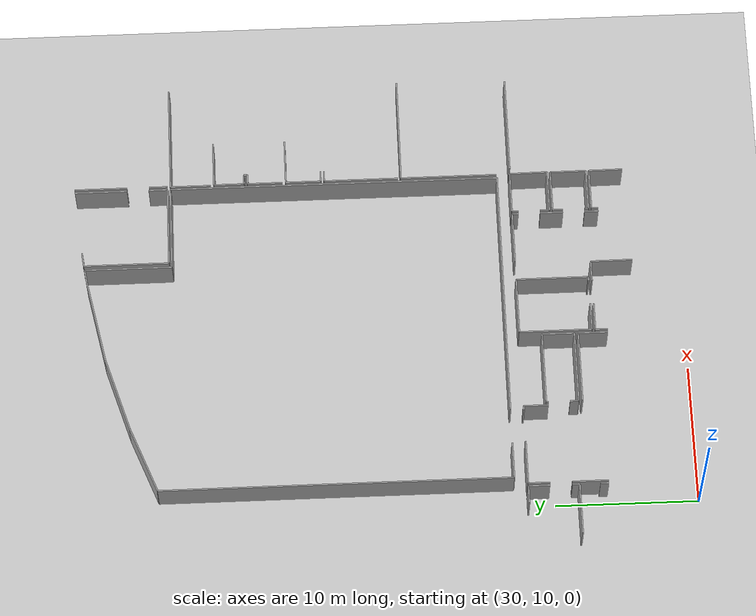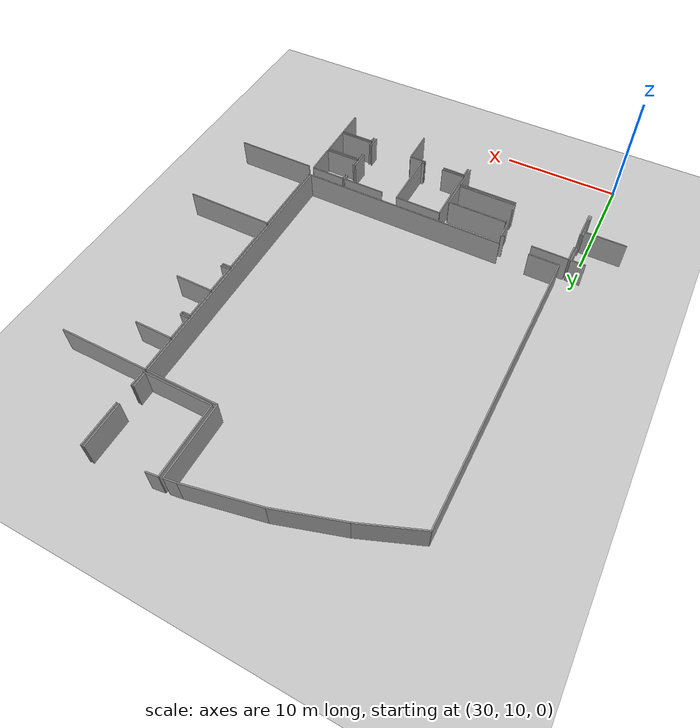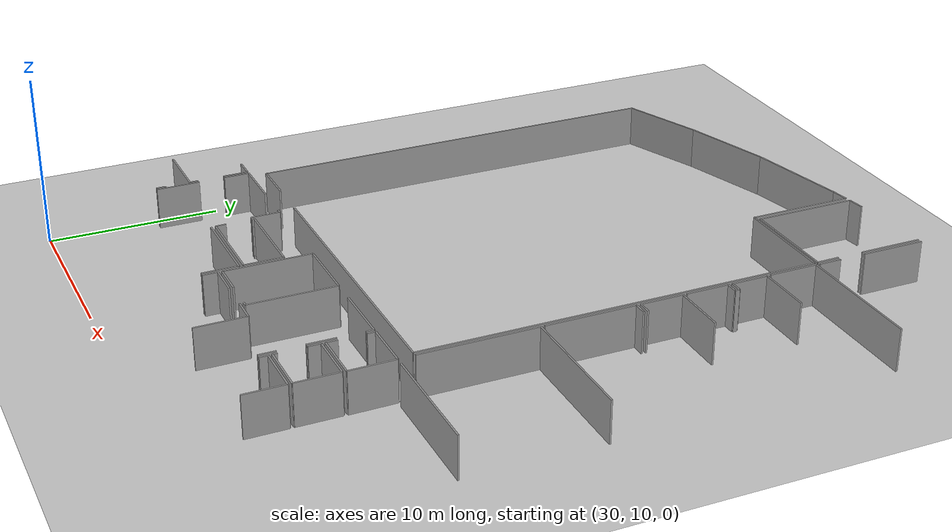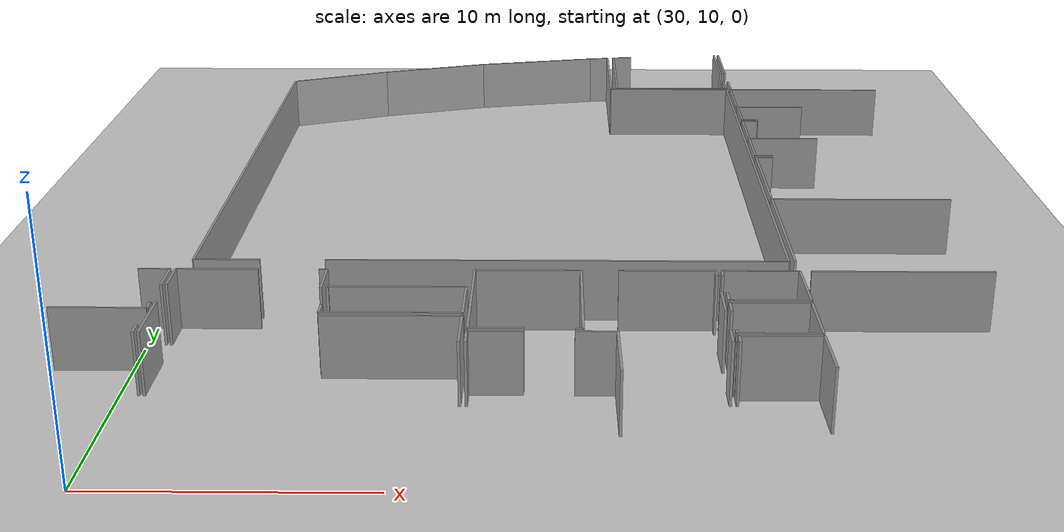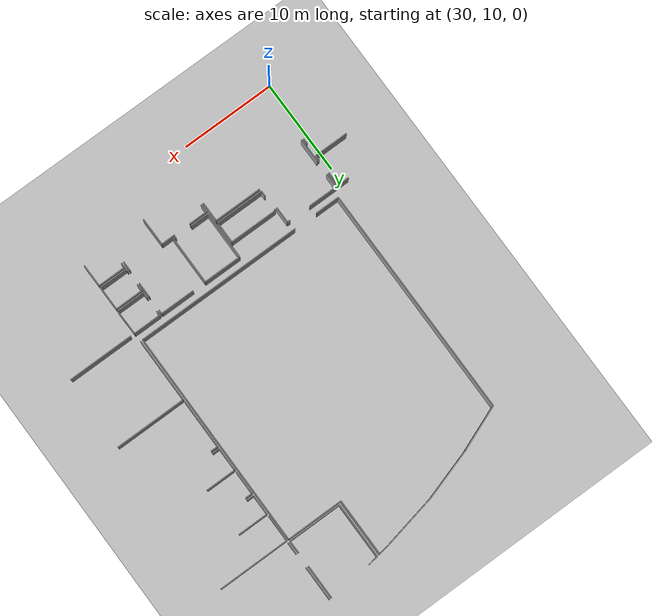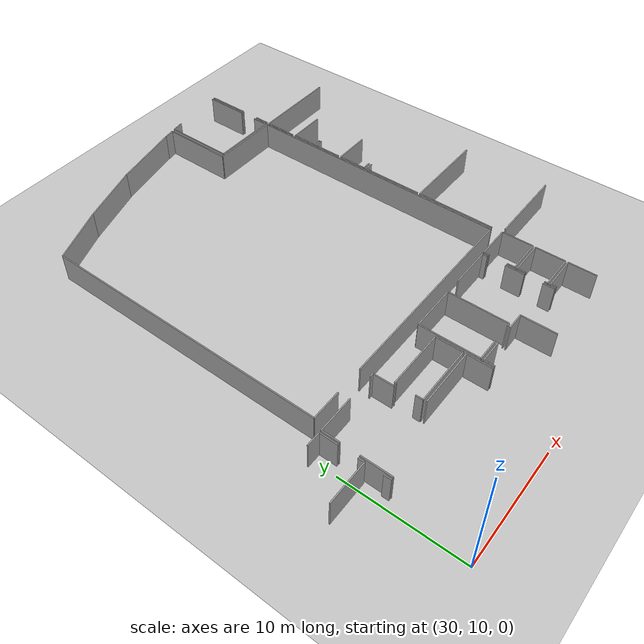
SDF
<sdf version="1.6">
 <world name="default">
  <model name="ground_plane">
   <static>1</static>
   <link name="link">
    <collision name="collision">
     <geometry><plane><normal>0 0 1</normal><size>100 100</size></plane></geometry>
     <surface><friction><ode><mu>100</mu><mu2>50</mu2></ode></friction></surface>
    </collision>
    <visual name="visual">
     <cast_shadows>0</cast_shadows>
     <geometry><plane><normal>0 0 1</normal><size>100 100</size></plane></geometry>
     <material>
      <script><uri>file://media/materials/scripts/gazebo.material</uri><name>Gazebo/Grey</name></script>
     </material>
    </visual>
   </link>
  </model>
  <model name="0510032217_A-40">
   <static>1</static>
   <link name="Wall_87">
    <collision name="Wall_87_Collision">
     <geometry><box><size>1.73548370724 0.1 2.5</size></box></geometry>
     <pose>0.867741853619 0 1.25 0 0 0</pose>
    </collision>
    <visual name="Wall_87_Visual">
     <pose>0.867741853619 0 1.25 0 0 0</pose>
     <geometry><box><size>1.73548370724 0.1 2.5</size></box></geometry>
     <material>
      <script><uri>file://media/materials/scripts/gazebo.material</uri><name>Gazebo/Grey</name></script>
      <ambient>1 1 1 1</ambient>
     </material>
    </visual>
    <pose>113.449840118 -32.9225713126 0 0 0 1.57079632679</pose>
   </link>
   <link name="Wall_88">
    <collision name="Wall_88_Collision">
     <geometry><box><size>0.306314079789 0.1 2.5</size></box></geometry>
     <pose>0.153157039894 0 1.25 0 0 0</pose>
    </collision>
    <visual name="Wall_88_Visual">
     <pose>0.153157039894 0 1.25 0 0 0</pose>
     <geometry><box><size>0.306314079789 0.1 2.5</size></box></geometry>
     <material>
      <script><uri>file://media/materials/scripts/gazebo.material</uri><name>Gazebo/Grey</name></script>
      <ambient>1 1 1 1</ambient>
     </material>
    </visual>
    <pose>113.449840118 -31.1870876053 0 0 0 3.14159265359</pose>
   </link>
   <link name="Wall_89">
    <collision name="Wall_89_Collision">
     <geometry><box><size>3.14866511014 0.1 2.5</size></box></geometry>
     <pose>1.57433255507 0 1.25 0 0 0</pose>
    </collision>
    <visual name="Wall_89_Visual">
     <pose>1.57433255507 0 1.25 0 0 0</pose>
     <geometry><box><size>3.14866511014 0.1 2.5</size></box></geometry>
     <material>
      <script><uri>file://media/materials/scripts/gazebo.material</uri><name>Gazebo/Grey</name></script>
      <ambient>1 1 1 1</ambient>
     </material>
    </visual>
    <pose>110.817239367 -31.1870876053 0 0 0 3.14159265359</pose>
   </link>
   <link name="Wall_90">
    <collision name="Wall_90_Collision">
     <geometry><box><size>1.51126789158 0.1 2.5</size></box></geometry>
     <pose>0.755633945792 0 1.25 0 0 0</pose>
    </collision>
    <visual name="Wall_90_Visual">
     <pose>0.755633945792 0 1.25 0 0 0</pose>
     <geometry><box><size>1.51126789158 0.1 2.5</size></box></geometry>
     <material>
      <script><uri>file://media/materials/scripts/gazebo.material</uri><name>Gazebo/Grey</name></script>
      <ambient>1 1 1 1</ambient>
     </material>
    </visual>
    <pose>107.668574256 -31.1870876053 0 0 0 -1.57079632679</pose>
   </link>
   <link name="Wall_91">
    <collision name="Wall_91_Collision">
     <geometry><box><size>2.55215206578 0.1 2.5</size></box></geometry>
     <pose>1.27607603289 0 1.25 0 0 0</pose>
    </collision>
    <visual name="Wall_91_Visual">
     <pose>1.27607603289 0 1.25 0 0 0</pose>
     <geometry><box><size>2.55215206578 0.1 2.5</size></box></geometry>
     <material>
      <script><uri>file://media/materials/scripts/gazebo.material</uri><name>Gazebo/Grey</name></script>
      <ambient>1 1 1 1</ambient>
     </material>
    </visual>
    <pose>107.668574256 -34.2324637093 0 0 0 -1.57079632679</pose>
   </link>
   <link name="Wall_93">
    <collision name="Wall_93_Collision">
     <geometry><box><size>3.59646228809 0.1 2.5</size></box></geometry>
     <pose>1.79823114405 0 1.25 0 0 0</pose>
    </collision>
    <visual name="Wall_93_Visual">
     <pose>1.79823114405 0 1.25 0 0 0</pose>
     <geometry><box><size>3.59646228809 0.1 2.5</size></box></geometry>
     <material>
      <script><uri>file://media/materials/scripts/gazebo.material</uri><name>Gazebo/Grey</name></script>
      <ambient>1 1 1 1</ambient>
     </material>
    </visual>
    <pose>107.462250025 -34.750558319 0 0 0 3.14159265359</pose>
   </link>
   <link name="Wall_98">
    <collision name="Wall_98_Collision">
     <geometry><box><size>1.22614455385 0.1 2.5</size></box></geometry>
     <pose>0.613072276926 0 1.25 0 0 0</pose>
    </collision>
    <visual name="Wall_98_Visual">
     <pose>0.613072276926 0 1.25 0 0 0</pose>
     <geometry><box><size>1.22614455385 0.1 2.5</size></box></geometry>
     <material>
      <script><uri>file://media/materials/scripts/gazebo.material</uri><name>Gazebo/Grey</name></script>
      <ambient>1 1 1 1</ambient>
     </material>
    </visual>
    <pose>106.239277738 -31.1966044056 0 0 0 0.0</pose>
   </link>
   <link name="Wall_99">
    <collision name="Wall_99_Collision">
     <geometry><box><size>1.49451832301 0.1 2.5</size></box></geometry>
     <pose>0.747259161506 0 1.25 0 0 0</pose>
    </collision>
    <visual name="Wall_99_Visual">
     <pose>0.747259161506 0 1.25 0 0 0</pose>
     <geometry><box><size>1.49451832301 0.1 2.5</size></box></geometry>
     <material>
      <script><uri>file://media/materials/scripts/gazebo.material</uri><name>Gazebo/Grey</name></script>
      <ambient>1 1 1 1</ambient>
     </material>
    </visual>
    <pose>107.465422292 -31.1966044056 0 0 0 -1.57079632679</pose>
   </link>
   <link name="Wall_100">
    <collision name="Wall_100_Collision">
     <geometry><box><size>0.503258399398 0.1 2.5</size></box></geometry>
     <pose>0.251629199699 0 1.25 0 0 0</pose>
    </collision>
    <visual name="Wall_100_Visual">
     <pose>0.251629199699 0 1.25 0 0 0</pose>
     <geometry><box><size>0.503258399398 0.1 2.5</size></box></geometry>
     <material>
      <script><uri>file://media/materials/scripts/gazebo.material</uri><name>Gazebo/Grey</name></script>
      <ambient>1 1 1 1</ambient>
     </material>
    </visual>
    <pose>107.465422292 -34.2473099178 0 0 0 -1.57709982374</pose>
   </link>
   <link name="Wall_104">
    <collision name="Wall_104_Collision">
     <geometry><box><size>0.586996244036 0.1 2.5</size></box></geometry>
     <pose>0.293498122018 0 1.25 0 0 0</pose>
    </collision>
    <visual name="Wall_104_Visual">
     <pose>0.293498122018 0 1.25 0 0 0</pose>
     <geometry><box><size>0.586996244036 0.1 2.5</size></box></geometry>
     <material>
      <script><uri>file://media/materials/scripts/gazebo.material</uri><name>Gazebo/Grey</name></script>
      <ambient>1 1 1 1</ambient>
     </material>
    </visual>
    <pose>107.467452543 -36.1853111359 0 0 0 -1.57079632679</pose>
   </link>
   <link name="Wall_106">
    <collision name="Wall_106_Collision">
     <geometry><box><size>5.13945284743 0.1 2.5</size></box></geometry>
     <pose>2.56972642371 0 1.25 0 0 0</pose>
    </collision>
    <visual name="Wall_106_Visual">
     <pose>2.56972642371 0 1.25 0 0 0</pose>
     <geometry><box><size>5.13945284743 0.1 2.5</size></box></geometry>
     <material>
      <script><uri>file://media/materials/scripts/gazebo.material</uri><name>Gazebo/Grey</name></script>
      <ambient>1 1 1 1</ambient>
     </material>
    </visual>
    <pose>118.833684398 -35.0583950868 0 0 0 3.14159265359</pose>
   </link>
   <link name="Wall_107">
    <collision name="Wall_107_Collision">
     <geometry><box><size>0.60907522079 0.1 2.5</size></box></geometry>
     <pose>0.304537610395 0 1.25 0 0 0</pose>
    </collision>
    <visual name="Wall_107_Visual">
     <pose>0.304537610395 0 1.25 0 0 0</pose>
     <geometry><box><size>0.60907522079 0.1 2.5</size></box></geometry>
     <material>
      <script><uri>file://media/materials/scripts/gazebo.material</uri><name>Gazebo/Grey</name></script>
      <ambient>1 1 1 1</ambient>
     </material>
    </visual>
    <pose>113.69423155 -35.0583950868 0 0 0 1.57079632679</pose>
   </link>
   <link name="Wall_108">
    <collision name="Wall_108_Collision">
     <geometry><box><size>0.150238554461 0.1 2.5</size></box></geometry>
     <pose>0.0751192772307 0 1.25 0 0 0</pose>
    </collision>
    <visual name="Wall_108_Visual">
     <pose>0.0751192772307 0 1.25 0 0 0</pose>
     <geometry><box><size>0.150238554461 0.1 2.5</size></box></geometry>
     <material>
      <script><uri>file://media/materials/scripts/gazebo.material</uri><name>Gazebo/Grey</name></script>
      <ambient>1 1 1 1</ambient>
     </material>
    </visual>
    <pose>113.69423155 -32.9309460968 0 0 0 1.57079632679</pose>
   </link>
   <link name="Wall_109">
    <collision name="Wall_109_Collision">
     <geometry><box><size>5.1483351944 0.1 2.5</size></box></geometry>
     <pose>2.5741675972 0 1.25 0 0 0</pose>
    </collision>
    <visual name="Wall_109_Visual">
     <pose>2.5741675972 0 1.25 0 0 0</pose>
     <geometry><box><size>5.1483351944 0.1 2.5</size></box></geometry>
     <material>
      <script><uri>file://media/materials/scripts/gazebo.material</uri><name>Gazebo/Grey</name></script>
      <ambient>1 1 1 1</ambient>
     </material>
    </visual>
    <pose>113.69423155 -32.7807075424 0 0 0 0.0</pose>
   </link>
   <link name="Wall_110">
    <collision name="Wall_110_Collision">
     <geometry><box><size>2.27770486369 0.1 2.5</size></box></geometry>
     <pose>1.13885243184 0 1.25 0 0 0</pose>
    </collision>
    <visual name="Wall_110_Visual">
     <pose>1.13885243184 0 1.25 0 0 0</pose>
     <geometry><box><size>2.27770486369 0.1 2.5</size></box></geometry>
     <material>
      <script><uri>file://media/materials/scripts/gazebo.material</uri><name>Gazebo/Grey</name></script>
      <ambient>1 1 1 1</ambient>
     </material>
    </visual>
    <pose>118.842566744 -32.7807075424 0 0 0 -1.57469602847</pose>
   </link>
   <link name="Wall_111">
    <collision name="Wall_111_Collision">
     <geometry><box><size>17.9050350218 0.1 2.5</size></box></geometry>
     <pose>8.95251751091 0 1.25 0 0 0</pose>
    </collision>
    <visual name="Wall_111_Visual">
     <pose>8.95251751091 0 1.25 0 0 0</pose>
     <geometry><box><size>17.9050350218 0.1 2.5</size></box></geometry>
     <material>
      <script><uri>file://media/materials/scripts/gazebo.material</uri><name>Gazebo/Grey</name></script>
      <ambient>1 1 1 1</ambient>
     </material>
    </visual>
    <pose>131.143348391 -30.2519033601 0 0 0 3.14159265359</pose>
   </link>
   <link name="Wall_112">
    <collision name="Wall_112_Collision">
     <geometry><box><size>2.58197137346 0.1 2.5</size></box></geometry>
     <pose>1.29098568673 0 1.25 0 0 0</pose>
    </collision>
    <visual name="Wall_112_Visual">
     <pose>1.29098568673 0 1.25 0 0 0</pose>
     <geometry><box><size>2.58197137346 0.1 2.5</size></box></geometry>
     <material>
      <script><uri>file://media/materials/scripts/gazebo.material</uri><name>Gazebo/Grey</name></script>
      <ambient>1 1 1 1</ambient>
     </material>
    </visual>
    <pose>110.724482286 -30.2519033601 0 0 0 3.14159265359</pose>
   </link>
   <link name="Wall_113">
    <collision name="Wall_113_Collision">
     <geometry><box><size>24.6818850878 0.1 2.5</size></box></geometry>
     <pose>12.3409425439 0 1.25 0 0 0</pose>
    </collision>
    <visual name="Wall_113_Visual">
     <pose>12.3409425439 0 1.25 0 0 0</pose>
     <geometry><box><size>24.6818850878 0.1 2.5</size></box></geometry>
     <material>
      <script><uri>file://media/materials/scripts/gazebo.material</uri><name>Gazebo/Grey</name></script>
      <ambient>1 1 1 1</ambient>
     </material>
    </visual>
    <pose>108.142510913 -30.2519033601 0 0 0 1.57079632679</pose>
   </link>
   <link name="Wall_114">
    <collision name="Wall_114_Collision">
     <geometry><box><size>5.05273165295 0.1 2.5</size></box></geometry>
     <pose>2.52636582647 0 1.25 0 0 0</pose>
    </collision>
    <visual name="Wall_114_Visual">
     <pose>2.52636582647 0 1.25 0 0 0</pose>
     <geometry><box><size>5.05273165295 0.1 2.5</size></box></geometry>
     <material>
      <script><uri>file://media/materials/scripts/gazebo.material</uri><name>Gazebo/Grey</name></script>
      <ambient>1 1 1 1</ambient>
     </material>
    </visual>
    <pose>108.142510913 -5.57001827226 0 0 0 0.375644743392</pose>
   </link>
   <link name="Wall_115">
    <collision name="Wall_115_Collision">
     <geometry><box><size>5.48936992875 0.1 2.5</size></box></geometry>
     <pose>2.74468496438 0 1.25 0 0 0</pose>
    </collision>
    <visual name="Wall_115_Visual">
     <pose>2.74468496438 0 1.25 0 0 0</pose>
     <geometry><box><size>5.48936992875 0.1 2.5</size></box></geometry>
     <material>
      <script><uri>file://media/materials/scripts/gazebo.material</uri><name>Gazebo/Grey</name></script>
      <ambient>1 1 1 1</ambient>
     </material>
    </visual>
    <pose>112.842922038 -3.71631052685 0 0 0 0.302062452057</pose>
   </link>
   <link name="Wall_116">
    <collision name="Wall_116_Collision">
     <geometry><box><size>6.12907708486 0.1 2.5</size></box></geometry>
     <pose>3.06453854243 0 1.25 0 0 0</pose>
    </collision>
    <visual name="Wall_116_Visual">
     <pose>3.06453854243 0 1.25 0 0 0</pose>
     <geometry><box><size>6.12907708486 0.1 2.5</size></box></geometry>
     <material>
      <script><uri>file://media/materials/scripts/gazebo.material</uri><name>Gazebo/Grey</name></script>
      <ambient>1 1 1 1</ambient>
     </material>
    </visual>
    <pose>118.083760532 -2.08327834738 0 0 0 0.203021003221</pose>
   </link>
   <link name="Wall_117">
    <collision name="Wall_117_Collision">
     <geometry><box><size>0.992554614726 0.1 2.5</size></box></geometry>
     <pose>0.496277307363 0 1.25 0 0 0</pose>
    </collision>
    <visual name="Wall_117_Visual">
     <pose>0.496277307363 0 1.25 0 0 0</pose>
     <geometry><box><size>0.992554614726 0.1 2.5</size></box></geometry>
     <material>
      <script><uri>file://media/materials/scripts/gazebo.material</uri><name>Gazebo/Grey</name></script>
      <ambient>1 1 1 1</ambient>
     </material>
    </visual>
    <pose>124.086958177 -0.847477413461 0 0 0 0.145033880902</pose>
   </link>
   <link name="Wall_118">
    <collision name="Wall_118_Collision">
     <geometry><box><size>6.17905542585 0.1 2.5</size></box></geometry>
     <pose>3.08952771292 0 1.25 0 0 0</pose>
    </collision>
    <visual name="Wall_118_Visual">
     <pose>3.08952771292 0 1.25 0 0 0</pose>
     <geometry><box><size>6.17905542585 0.1 2.5</size></box></geometry>
     <material>
      <script><uri>file://media/materials/scripts/gazebo.material</uri><name>Gazebo/Grey</name></script>
      <ambient>1 1 1 1</ambient>
     </material>
    </visual>
    <pose>125.06909197 -0.704027509897 0 0 0 -1.57079632679</pose>
   </link>
   <link name="Wall_119">
    <collision name="Wall_119_Collision">
     <geometry><box><size>6.09202111461 0.1 2.5</size></box></geometry>
     <pose>3.0460105573 0 1.25 0 0 0</pose>
    </collision>
    <visual name="Wall_119_Visual">
     <pose>3.0460105573 0 1.25 0 0 0</pose>
     <geometry><box><size>6.09202111461 0.1 2.5</size></box></geometry>
     <material>
      <script><uri>file://media/materials/scripts/gazebo.material</uri><name>Gazebo/Grey</name></script>
      <ambient>1 1 1 1</ambient>
     </material>
    </visual>
    <pose>125.06909197 -6.88308293574 0 0 0 0.0</pose>
   </link>
   <link name="Wall_120">
    <collision name="Wall_120_Collision">
     <geometry><box><size>23.3688271766 0.1 2.5</size></box></geometry>
     <pose>11.6844135883 0 1.25 0 0 0</pose>
    </collision>
    <visual name="Wall_120_Visual">
     <pose>11.6844135883 0 1.25 0 0 0</pose>
     <geometry><box><size>23.3688271766 0.1 2.5</size></box></geometry>
     <material>
      <script><uri>file://media/materials/scripts/gazebo.material</uri><name>Gazebo/Grey</name></script>
      <ambient>1 1 1 1</ambient>
     </material>
    </visual>
    <pose>131.161113085 -6.88308293574 0 0 0 -1.57155651452</pose>
   </link>
   <link name="Wall_124">
    <collision name="Wall_124_Collision">
     <geometry><box><size>0.876941427266 0.1 2.5</size></box></geometry>
     <pose>0.438470713633 0 1.25 0 0 0</pose>
    </collision>
    <visual name="Wall_124_Visual">
     <pose>0.438470713633 0 1.25 0 0 0</pose>
     <geometry><box><size>0.876941427266 0.1 2.5</size></box></geometry>
     <material>
      <script><uri>file://media/materials/scripts/gazebo.material</uri><name>Gazebo/Grey</name></script>
      <ambient>1 1 1 1</ambient>
     </material>
    </visual>
    <pose>119.059549792 -37.4251598822 0 0 0 1.57079632679</pose>
   </link>
   <link name="Wall_125">
    <collision name="Wall_125_Collision">
     <geometry><box><size>1.98583900112 0.1 2.5</size></box></geometry>
     <pose>0.992919500558 0 1.25 0 0 0</pose>
    </collision>
    <visual name="Wall_125_Visual">
     <pose>0.992919500558 0 1.25 0 0 0</pose>
     <geometry><box><size>1.98583900112 0.1 2.5</size></box></geometry>
     <material>
      <script><uri>file://media/materials/scripts/gazebo.material</uri><name>Gazebo/Grey</name></script>
      <ambient>1 1 1 1</ambient>
     </material>
    </visual>
    <pose>119.059549792 -36.548218455 0 0 0 0.0</pose>
   </link>
   <link name="Wall_126">
    <collision name="Wall_126_Collision">
     <geometry><box><size>1.49350319764 0.1 2.5</size></box></geometry>
     <pose>0.746751598822 0 1.25 0 0 0</pose>
    </collision>
    <visual name="Wall_126_Visual">
     <pose>0.746751598822 0 1.25 0 0 0</pose>
     <geometry><box><size>1.49350319764 0.1 2.5</size></box></geometry>
     <material>
      <script><uri>file://media/materials/scripts/gazebo.material</uri><name>Gazebo/Grey</name></script>
      <ambient>1 1 1 1</ambient>
     </material>
    </visual>
    <pose>122.829471627 -36.548218455 0 0 0 0.0</pose>
   </link>
   <link name="Wall_127">
    <collision name="Wall_127_Collision">
     <geometry><box><size>2.957240446 0.1 2.5</size></box></geometry>
     <pose>1.478620223 0 1.25 0 0 0</pose>
    </collision>
    <visual name="Wall_127_Visual">
     <pose>1.478620223 0 1.25 0 0 0</pose>
     <geometry><box><size>2.957240446 0.1 2.5</size></box></geometry>
     <material>
      <script><uri>file://media/materials/scripts/gazebo.material</uri><name>Gazebo/Grey</name></script>
      <ambient>1 1 1 1</ambient>
     </material>
    </visual>
    <pose>124.322974825 -36.548218455 0 0 0 -1.56478910448</pose>
   </link>
   <link name="Wall_130">
    <collision name="Wall_130_Collision">
     <geometry><box><size>5.11534361994 0.1 2.5</size></box></geometry>
     <pose>2.55767180997 0 1.25 0 0 0</pose>
    </collision>
    <visual name="Wall_130_Visual">
     <pose>2.55767180997 0 1.25 0 0 0</pose>
     <geometry><box><size>5.11534361994 0.1 2.5</size></box></geometry>
     <material>
      <script><uri>file://media/materials/scripts/gazebo.material</uri><name>Gazebo/Grey</name></script>
      <ambient>1 1 1 1</ambient>
     </material>
    </visual>
    <pose>113.711996244 -35.3216932291 0 0 0 0.0</pose>
   </link>
   <link name="Wall_131">
    <collision name="Wall_131_Collision">
     <geometry><box><size>2.09712211958 0.1 2.5</size></box></geometry>
     <pose>1.04856105979 0 1.25 0 0 0</pose>
    </collision>
    <visual name="Wall_131_Visual">
     <pose>1.04856105979 0 1.25 0 0 0</pose>
     <geometry><box><size>2.09712211958 0.1 2.5</size></box></geometry>
     <material>
      <script><uri>file://media/materials/scripts/gazebo.material</uri><name>Gazebo/Grey</name></script>
      <ambient>1 1 1 1</ambient>
     </material>
    </visual>
    <pose>118.827339864 -35.3216932291 0 0 0 -1.57079632679</pose>
   </link>
   <link name="Wall_133">
    <collision name="Wall_133_Collision">
     <geometry><box><size>0.289310729875 0.1 2.5</size></box></geometry>
     <pose>0.144655364938 0 1.25 0 0 0</pose>
    </collision>
    <visual name="Wall_133_Visual">
     <pose>0.144655364938 0 1.25 0 0 0</pose>
     <geometry><box><size>0.289310729875 0.1 2.5</size></box></geometry>
     <material>
      <script><uri>file://media/materials/scripts/gazebo.material</uri><name>Gazebo/Grey</name></script>
      <ambient>1 1 1 1</ambient>
     </material>
    </visual>
    <pose>123.126395797 -36.314866511 0 0 0 3.14159265359</pose>
   </link>
   <link name="Wall_134">
    <collision name="Wall_134_Collision">
     <geometry><box><size>1.98583900112 0.1 2.5</size></box></geometry>
     <pose>0.992919500558 0 1.25 0 0 0</pose>
    </collision>
    <visual name="Wall_134_Visual">
     <pose>0.992919500558 0 1.25 0 0 0</pose>
     <geometry><box><size>1.98583900112 0.1 2.5</size></box></geometry>
     <material>
      <script><uri>file://media/materials/scripts/gazebo.material</uri><name>Gazebo/Grey</name></script>
      <ambient>1 1 1 1</ambient>
     </material>
    </visual>
    <pose>121.06188458 -36.314866511 0 0 0 3.14159265359</pose>
   </link>
   <link name="Wall_135">
    <collision name="Wall_135_Collision">
     <geometry><box><size>5.12270327885 0.1 2.5</size></box></geometry>
     <pose>2.56135163943 0 1.25 0 0 0</pose>
    </collision>
    <visual name="Wall_135_Visual">
     <pose>2.56135163943 0 1.25 0 0 0</pose>
     <geometry><box><size>5.12270327885 0.1 2.5</size></box></geometry>
     <material>
      <script><uri>file://media/materials/scripts/gazebo.material</uri><name>Gazebo/Grey</name></script>
      <ambient>1 1 1 1</ambient>
     </material>
    </visual>
    <pose>119.076045579 -36.314866511 0 0 0 1.57079632679</pose>
   </link>
   <link name="Wall_136">
    <collision name="Wall_136_Collision">
     <geometry><box><size>4.05035021825 0.1 2.5</size></box></geometry>
     <pose>2.02517510913 0 1.25 0 0 0</pose>
    </collision>
    <visual name="Wall_136_Visual">
     <pose>2.02517510913 0 1.25 0 0 0</pose>
     <geometry><box><size>4.05035021825 0.1 2.5</size></box></geometry>
     <material>
      <script><uri>file://media/materials/scripts/gazebo.material</uri><name>Gazebo/Grey</name></script>
      <ambient>1 1 1 1</ambient>
     </material>
    </visual>
    <pose>119.076045579 -31.1921632322 0 0 0 0.0</pose>
   </link>
   <link name="Wall_137">
    <collision name="Wall_137_Collision">
     <geometry><box><size>5.12270327885 0.1 2.5</size></box></geometry>
     <pose>2.56135163943 0 1.25 0 0 0</pose>
    </collision>
    <visual name="Wall_137_Visual">
     <pose>2.56135163943 0 1.25 0 0 0</pose>
     <geometry><box><size>5.12270327885 0.1 2.5</size></box></geometry>
     <material>
      <script><uri>file://media/materials/scripts/gazebo.material</uri><name>Gazebo/Grey</name></script>
      <ambient>1 1 1 1</ambient>
     </material>
    </visual>
    <pose>123.126395797 -31.1921632322 0 0 0 -1.57079632679</pose>
   </link>
   <link name="Wall_139">
    <collision name="Wall_139_Collision">
     <geometry><box><size>3.69378743275 0.1 2.5</size></box></geometry>
     <pose>1.84689371637 0 1.25 0 0 0</pose>
    </collision>
    <visual name="Wall_139_Visual">
     <pose>1.84689371637 0 1.25 0 0 0</pose>
     <geometry><box><size>3.69378743275 0.1 2.5</size></box></geometry>
     <material>
      <script><uri>file://media/materials/scripts/gazebo.material</uri><name>Gazebo/Grey</name></script>
      <ambient>1 1 1 1</ambient>
     </material>
    </visual>
    <pose>124.550109126 -31.1893716374 0 0 0 0.0</pose>
   </link>
   <link name="Wall_140">
    <collision name="Wall_140_Collision">
     <geometry><box><size>0.440183737692 0.1 2.5</size></box></geometry>
     <pose>0.220091868846 0 1.25 0 0 0</pose>
    </collision>
    <visual name="Wall_140_Visual">
     <pose>0.220091868846 0 1.25 0 0 0</pose>
     <geometry><box><size>0.440183737692 0.1 2.5</size></box></geometry>
     <material>
      <script><uri>file://media/materials/scripts/gazebo.material</uri><name>Gazebo/Grey</name></script>
      <ambient>1 1 1 1</ambient>
     </material>
    </visual>
    <pose>128.243896559 -31.1893716374 0 0 0 -1.57079632679</pose>
   </link>
   <link name="Wall_141">
    <collision name="Wall_141_Collision">
     <geometry><box><size>1.63105268501 0.1 2.5</size></box></geometry>
     <pose>0.815526342503 0 1.25 0 0 0</pose>
    </collision>
    <visual name="Wall_141_Visual">
     <pose>0.815526342503 0 1.25 0 0 0</pose>
     <geometry><box><size>1.63105268501 0.1 2.5</size></box></geometry>
     <material>
      <script><uri>file://media/materials/scripts/gazebo.material</uri><name>Gazebo/Grey</name></script>
      <ambient>1 1 1 1</ambient>
     </material>
    </visual>
    <pose>128.243896559 -33.1857425642 0 0 0 -1.57079632679</pose>
   </link>
   <link name="Wall_142">
    <collision name="Wall_142_Collision">
     <geometry><box><size>0.984164044259 0.1 2.5</size></box></geometry>
     <pose>0.49208202213 0 1.25 0 0 0</pose>
    </collision>
    <visual name="Wall_142_Visual">
     <pose>0.49208202213 0 1.25 0 0 0</pose>
     <geometry><box><size>0.984164044259 0.1 2.5</size></box></geometry>
     <material>
      <script><uri>file://media/materials/scripts/gazebo.material</uri><name>Gazebo/Grey</name></script>
      <ambient>1 1 1 1</ambient>
     </material>
    </visual>
    <pose>128.243896559 -36.352679931 0 0 0 -1.57079632679</pose>
   </link>
   <link name="Wall_144">
    <collision name="Wall_144_Collision">
     <geometry><box><size>2.99588874226 0.1 2.5</size></box></geometry>
     <pose>1.49794437113 0 1.25 0 0 0</pose>
    </collision>
    <visual name="Wall_144_Visual">
     <pose>1.49794437113 0 1.25 0 0 0</pose>
     <geometry><box><size>2.99588874226 0.1 2.5</size></box></geometry>
     <material>
      <script><uri>file://media/materials/scripts/gazebo.material</uri><name>Gazebo/Grey</name></script>
      <ambient>1 1 1 1</ambient>
     </material>
    </visual>
    <pose>131.459306162 -33.8582631205 0 0 0 3.14159265359</pose>
   </link>
   <link name="Wall_145">
    <collision name="Wall_145_Collision">
     <geometry><box><size>0.65995837986 0.1 2.5</size></box></geometry>
     <pose>0.32997918993 0 1.25 0 0 0</pose>
    </collision>
    <visual name="Wall_145_Visual">
     <pose>0.32997918993 0 1.25 0 0 0</pose>
     <geometry><box><size>0.65995837986 0.1 2.5</size></box></geometry>
     <material>
      <script><uri>file://media/materials/scripts/gazebo.material</uri><name>Gazebo/Grey</name></script>
      <ambient>1 1 1 1</ambient>
     </material>
    </visual>
    <pose>128.46341742 -33.8582631205 0 0 0 1.57079632679</pose>
   </link>
   <link name="Wall_146">
    <collision name="Wall_146_Collision">
     <geometry><box><size>0.4755862349 0.1 2.5</size></box></geometry>
     <pose>0.23779311745 0 1.25 0 0 0</pose>
    </collision>
    <visual name="Wall_146_Visual">
     <pose>0.23779311745 0 1.25 0 0 0</pose>
     <geometry><box><size>0.4755862349 0.1 2.5</size></box></geometry>
     <material>
      <script><uri>file://media/materials/scripts/gazebo.material</uri><name>Gazebo/Grey</name></script>
      <ambient>1 1 1 1</ambient>
     </material>
    </visual>
    <pose>128.46341742 -31.6544259466 0 0 0 1.57079632679</pose>
   </link>
   <link name="Wall_147">
    <collision name="Wall_147_Collision">
     <geometry><box><size>2.96035935438 0.1 2.5</size></box></geometry>
     <pose>1.48017967719 0 1.25 0 0 0</pose>
    </collision>
    <visual name="Wall_147_Visual">
     <pose>1.48017967719 0 1.25 0 0 0</pose>
     <geometry><box><size>2.96035935438 0.1 2.5</size></box></geometry>
     <material>
      <script><uri>file://media/materials/scripts/gazebo.material</uri><name>Gazebo/Grey</name></script>
      <ambient>1 1 1 1</ambient>
     </material>
    </visual>
    <pose>128.46341742 -31.1788397117 0 0 0 0.0</pose>
   </link>
   <link name="Wall_148">
    <collision name="Wall_148_Collision">
     <geometry><box><size>2.67965895983 0.1 2.5</size></box></geometry>
     <pose>1.33982947991 0 1.25 0 0 0</pose>
    </collision>
    <visual name="Wall_148_Visual">
     <pose>1.33982947991 0 1.25 0 0 0</pose>
     <geometry><box><size>2.67965895983 0.1 2.5</size></box></geometry>
     <material>
      <script><uri>file://media/materials/scripts/gazebo.material</uri><name>Gazebo/Grey</name></script>
      <ambient>1 1 1 1</ambient>
     </material>
    </visual>
    <pose>131.423776774 -31.1788397117 0 0 0 -1.55753701675</pose>
   </link>
   <link name="Wall_149">
    <collision name="Wall_149_Collision">
     <geometry><box><size>2.98700639529 0.1 2.5</size></box></geometry>
     <pose>1.49350319764 0 1.25 0 0 0</pose>
    </collision>
    <visual name="Wall_149_Visual">
     <pose>1.49350319764 0 1.25 0 0 0</pose>
     <geometry><box><size>2.98700639529 0.1 2.5</size></box></geometry>
     <material>
      <script><uri>file://media/materials/scripts/gazebo.material</uri><name>Gazebo/Grey</name></script>
      <ambient>1 1 1 1</ambient>
     </material>
    </visual>
    <pose>131.449154908 -36.6352654553 0 0 0 3.14159265359</pose>
   </link>
   <link name="Wall_150">
    <collision name="Wall_150_Collision">
     <geometry><box><size>0.258603187494 0.1 2.5</size></box></geometry>
     <pose>0.129301593747 0 1.25 0 0 0</pose>
    </collision>
    <visual name="Wall_150_Visual">
     <pose>0.129301593747 0 1.25 0 0 0</pose>
     <geometry><box><size>0.258603187494 0.1 2.5</size></box></geometry>
     <material>
      <script><uri>file://media/materials/scripts/gazebo.material</uri><name>Gazebo/Grey</name></script>
      <ambient>1 1 1 1</ambient>
     </material>
    </visual>
    <pose>128.462148513 -36.6352654553 0 0 0 1.57079632679</pose>
   </link>
   <link name="Wall_151">
    <collision name="Wall_151_Collision">
     <geometry><box><size>0.728225560857 0.1 2.5</size></box></geometry>
     <pose>0.364112780428 0 1.25 0 0 0</pose>
    </collision>
    <visual name="Wall_151_Visual">
     <pose>0.364112780428 0 1.25 0 0 0</pose>
     <geometry><box><size>0.728225560857 0.1 2.5</size></box></geometry>
     <material>
      <script><uri>file://media/materials/scripts/gazebo.material</uri><name>Gazebo/Grey</name></script>
      <ambient>1 1 1 1</ambient>
     </material>
    </visual>
    <pose>128.462148513 -34.8100700437 0 0 0 1.57079632679</pose>
   </link>
   <link name="Wall_152">
    <collision name="Wall_152_Collision">
     <geometry><box><size>2.97685514161 0.1 2.5</size></box></geometry>
     <pose>1.4884275708 0 1.25 0 0 0</pose>
    </collision>
    <visual name="Wall_152_Visual">
     <pose>1.4884275708 0 1.25 0 0 0</pose>
     <geometry><box><size>2.97685514161 0.1 2.5</size></box></geometry>
     <material>
      <script><uri>file://media/materials/scripts/gazebo.material</uri><name>Gazebo/Grey</name></script>
      <ambient>1 1 1 1</ambient>
     </material>
    </visual>
    <pose>128.462148513 -34.0818444828 0 0 0 0.0</pose>
   </link>
   <link name="Wall_153">
    <collision name="Wall_153_Collision">
     <geometry><box><size>2.55344115082 0.1 2.5</size></box></geometry>
     <pose>1.27672057541 0 1.25 0 0 0</pose>
    </collision>
    <visual name="Wall_153_Visual">
     <pose>1.27672057541 0 1.25 0 0 0</pose>
     <geometry><box><size>2.55344115082 0.1 2.5</size></box></geometry>
     <material>
      <script><uri>file://media/materials/scripts/gazebo.material</uri><name>Gazebo/Grey</name></script>
      <ambient>1 1 1 1</ambient>
     </material>
    </visual>
    <pose>131.439003654 -34.0818444828 0 0 0 -1.56682079737</pose>
   </link>
   <link name="Wall_156">
    <collision name="Wall_156_Collision">
     <geometry><box><size>0.492208912801 0.1 2.5</size></box></geometry>
     <pose>0.2461044564 0 1.25 0 0 0</pose>
    </collision>
    <visual name="Wall_156_Visual">
     <pose>0.2461044564 0 1.25 0 0 0</pose>
     <geometry><box><size>0.492208912801 0.1 2.5</size></box></geometry>
     <material>
      <script><uri>file://media/materials/scripts/gazebo.material</uri><name>Gazebo/Grey</name></script>
      <ambient>1 1 1 1</ambient>
     </material>
    </visual>
    <pose>128.493871181 -37.3444574155 0 0 0 1.57079632679</pose>
   </link>
   <link name="Wall_157">
    <collision name="Wall_157_Collision">
     <geometry><box><size>2.95528372754 0.1 2.5</size></box></geometry>
     <pose>1.47764186377 0 1.25 0 0 0</pose>
    </collision>
    <visual name="Wall_157_Visual">
     <pose>1.47764186377 0 1.25 0 0 0</pose>
     <geometry><box><size>2.95528372754 0.1 2.5</size></box></geometry>
     <material>
      <script><uri>file://media/materials/scripts/gazebo.material</uri><name>Gazebo/Grey</name></script>
      <ambient>1 1 1 1</ambient>
     </material>
    </visual>
    <pose>128.493871181 -36.8522485027 0 0 0 0.0</pose>
   </link>
   <link name="Wall_158">
    <collision name="Wall_158_Collision">
     <geometry><box><size>2.38866582477 0.1 2.5</size></box></geometry>
     <pose>1.19433291238 0 1.25 0 0 0</pose>
    </collision>
    <visual name="Wall_158_Visual">
     <pose>1.19433291238 0 1.25 0 0 0</pose>
     <geometry><box><size>2.38866582477 0.1 2.5</size></box></geometry>
     <material>
      <script><uri>file://media/materials/scripts/gazebo.material</uri><name>Gazebo/Grey</name></script>
      <ambient>1 1 1 1</ambient>
     </material>
    </visual>
    <pose>131.449154908 -36.8522485027 0 0 0 -1.56282794466</pose>
   </link>
   <link name="Wall_190">
    <collision name="Wall_190_Collision">
     <geometry><box><size>6.99548269211 0.1 2.5</size></box></geometry>
     <pose>3.49774134606 0 1.25 0 0 0</pose>
    </collision>
    <visual name="Wall_190_Visual">
     <pose>3.49774134606 0 1.25 0 0 0</pose>
     <geometry><box><size>6.99548269211 0.1 2.5</size></box></geometry>
     <material>
      <script><uri>file://media/materials/scripts/gazebo.material</uri><name>Gazebo/Grey</name></script>
      <ambient>1 1 1 1</ambient>
     </material>
    </visual>
    <pose>131.861549589 -31.1954623896 0 0 0 0.0</pose>
   </link>
   <link name="Wall_253">
    <collision name="Wall_253_Collision">
     <geometry><box><size>6.85311135925 0.1 2.5</size></box></geometry>
     <pose>3.42655567963 0 1.25 0 0 0</pose>
    </collision>
    <visual name="Wall_253_Visual">
     <pose>3.42655567963 0 1.25 0 0 0</pose>
     <geometry><box><size>6.85311135925 0.1 2.5</size></box></geometry>
     <material>
      <script><uri>file://media/materials/scripts/gazebo.material</uri><name>Gazebo/Grey</name></script>
      <ambient>1 1 1 1</ambient>
     </material>
    </visual>
    <pose>131.392054106 -30.2309663994 0 0 0 1.57079632679</pose>
   </link>
   <link name="Wall_254">
    <collision name="Wall_254_Collision">
     <geometry><box><size>7.63247386052 0.1 2.5</size></box></geometry>
     <pose>3.81623693026 0 1.25 0 0 0</pose>
    </collision>
    <visual name="Wall_254_Visual">
     <pose>3.81623693026 0 1.25 0 0 0</pose>
     <geometry><box><size>7.63247386052 0.1 2.5</size></box></geometry>
     <material>
      <script><uri>file://media/materials/scripts/gazebo.material</uri><name>Gazebo/Grey</name></script>
      <ambient>1 1 1 1</ambient>
     </material>
    </visual>
    <pose>131.392054106 -23.3778550401 0 0 0 0.0</pose>
   </link>
   <link name="Wall_258">
    <collision name="Wall_258_Collision">
     <geometry><box><size>5.28068216425 0.1 2.5</size></box></geometry>
     <pose>2.64034108212 0 1.25 0 0 0</pose>
    </collision>
    <visual name="Wall_258_Visual">
     <pose>2.64034108212 0 1.25 0 0 0</pose>
     <geometry><box><size>5.28068216425 0.1 2.5</size></box></geometry>
     <material>
      <script><uri>file://media/materials/scripts/gazebo.material</uri><name>Gazebo/Grey</name></script>
      <ambient>1 1 1 1</ambient>
     </material>
    </visual>
    <pose>131.385709573 -23.1653131662 0 0 0 1.57079632679</pose>
   </link>
   <link name="Wall_259">
    <collision name="Wall_259_Collision">
     <geometry><box><size>0.767688559537 0.1 2.5</size></box></geometry>
     <pose>0.383844279769 0 1.25 0 0 0</pose>
    </collision>
    <visual name="Wall_259_Visual">
     <pose>0.383844279769 0 1.25 0 0 0</pose>
     <geometry><box><size>0.767688559537 0.1 2.5</size></box></geometry>
     <material>
      <script><uri>file://media/materials/scripts/gazebo.material</uri><name>Gazebo/Grey</name></script>
      <ambient>1 1 1 1</ambient>
     </material>
    </visual>
    <pose>131.385709573 -17.8846310019 0 0 0 0.0</pose>
   </link>
   <link name="Wall_264">
    <collision name="Wall_264_Collision">
     <geometry><box><size>0.776570906507 0.1 2.5</size></box></geometry>
     <pose>0.388285453253 0 1.25 0 0 0</pose>
    </collision>
    <visual name="Wall_264_Visual">
     <pose>0.388285453253 0 1.25 0 0 0</pose>
     <geometry><box><size>0.776570906507 0.1 2.5</size></box></geometry>
     <material>
      <script><uri>file://media/materials/scripts/gazebo.material</uri><name>Gazebo/Grey</name></script>
      <ambient>1 1 1 1</ambient>
     </material>
    </visual>
    <pose>132.161011572 -17.6430311643 0 0 0 3.14159265359</pose>
   </link>
   <link name="Wall_265">
    <collision name="Wall_265_Collision">
     <geometry><box><size>2.50634453355 0.1 2.5</size></box></geometry>
     <pose>1.25317226677 0 1.25 0 0 0</pose>
    </collision>
    <visual name="Wall_265_Visual">
     <pose>1.25317226677 0 1.25 0 0 0</pose>
     <geometry><box><size>2.50634453355 0.1 2.5</size></box></geometry>
     <material>
      <script><uri>file://media/materials/scripts/gazebo.material</uri><name>Gazebo/Grey</name></script>
      <ambient>1 1 1 1</ambient>
     </material>
    </visual>
    <pose>131.384440666 -17.6430311643 0 0 0 1.57079632679</pose>
   </link>
   <link name="Wall_266">
    <collision name="Wall_266_Collision">
     <geometry><box><size>3.24586336413 0.1 2.5</size></box></geometry>
     <pose>1.62293168206 0 1.25 0 0 0</pose>
    </collision>
    <visual name="Wall_266_Visual">
     <pose>1.62293168206 0 1.25 0 0 0</pose>
     <geometry><box><size>3.24586336413 0.1 2.5</size></box></geometry>
     <material>
      <script><uri>file://media/materials/scripts/gazebo.material</uri><name>Gazebo/Grey</name></script>
      <ambient>1 1 1 1</ambient>
     </material>
    </visual>
    <pose>131.384440666 -15.1366866308 0 0 0 0.0</pose>
   </link>
   <link name="Wall_277">
    <collision name="Wall_277_Collision">
     <geometry><box><size>2.87044462491 0.1 2.5</size></box></geometry>
     <pose>1.43522231246 0 1.25 0 0 0</pose>
    </collision>
    <visual name="Wall_277_Visual">
     <pose>1.43522231246 0 1.25 0 0 0</pose>
     <geometry><box><size>2.87044462491 0.1 2.5</size></box></geometry>
     <material>
      <script><uri>file://media/materials/scripts/gazebo.material</uri><name>Gazebo/Grey</name></script>
      <ambient>1 1 1 1</ambient>
     </material>
    </visual>
    <pose>131.356524718 -9.76997259162 0 0 0 1.57079632679</pose>
   </link>
   <link name="Wall_278">
    <collision name="Wall_278_Collision">
     <geometry><box><size>7.6680032484 0.1 2.5</size></box></geometry>
     <pose>3.8340016242 0 1.25 0 0 0</pose>
    </collision>
    <visual name="Wall_278_Visual">
     <pose>3.8340016242 0 1.25 0 0 0</pose>
     <geometry><box><size>7.6680032484 0.1 2.5</size></box></geometry>
     <material>
      <script><uri>file://media/materials/scripts/gazebo.material</uri><name>Gazebo/Grey</name></script>
      <ambient>1 1 1 1</ambient>
     </material>
    </visual>
    <pose>131.356524718 -6.8995279667 0 0 0 0.0</pose>
   </link>
   <link name="Wall_282">
    <collision name="Wall_282_Collision">
     <geometry><box><size>2.49885798396 0.1 2.5</size></box></geometry>
     <pose>1.24942899198 0 1.25 0 0 0</pose>
    </collision>
    <visual name="Wall_282_Visual">
     <pose>1.24942899198 0 1.25 0 0 0</pose>
     <geometry><box><size>2.49885798396 0.1 2.5</size></box></geometry>
     <material>
      <script><uri>file://media/materials/scripts/gazebo.material</uri><name>Gazebo/Grey</name></script>
      <ambient>1 1 1 1</ambient>
     </material>
    </visual>
    <pose>131.381902853 -14.9030809055 0 0 0 1.57079632679</pose>
   </link>
   <link name="Wall_283">
    <collision name="Wall_283_Collision">
     <geometry><box><size>0.713125571008 0.1 2.5</size></box></geometry>
     <pose>0.356562785504 0 1.25 0 0 0</pose>
    </collision>
    <visual name="Wall_283_Visual">
     <pose>0.356562785504 0 1.25 0 0 0</pose>
     <geometry><box><size>0.713125571008 0.1 2.5</size></box></geometry>
     <material>
      <script><uri>file://media/materials/scripts/gazebo.material</uri><name>Gazebo/Grey</name></script>
      <ambient>1 1 1 1</ambient>
     </material>
    </visual>
    <pose>131.381902853 -12.4042229215 0 0 0 0.0</pose>
   </link>
   <link name="Wall_284">
    <collision name="Wall_284_Collision">
     <geometry><box><size>0.259618312862 0.1 2.5</size></box></geometry>
     <pose>0.129809156431 0 1.25 0 0 0</pose>
    </collision>
    <visual name="Wall_284_Visual">
     <pose>0.129809156431 0 1.25 0 0 0</pose>
     <geometry><box><size>0.259618312862 0.1 2.5</size></box></geometry>
     <material>
      <script><uri>file://media/materials/scripts/gazebo.material</uri><name>Gazebo/Grey</name></script>
      <ambient>1 1 1 1</ambient>
     </material>
    </visual>
    <pose>132.095028424 -12.4042229215 0 0 0 1.57079632679</pose>
   </link>
   <link name="Wall_285">
    <collision name="Wall_285_Collision">
     <geometry><box><size>0.702974317328 0.1 2.5</size></box></geometry>
     <pose>0.351487158664 0 1.25 0 0 0</pose>
    </collision>
    <visual name="Wall_285_Visual">
     <pose>0.351487158664 0 1.25 0 0 0</pose>
     <geometry><box><size>0.702974317328 0.1 2.5</size></box></geometry>
     <material>
      <script><uri>file://media/materials/scripts/gazebo.material</uri><name>Gazebo/Grey</name></script>
      <ambient>1 1 1 1</ambient>
     </material>
    </visual>
    <pose>132.095028424 -12.1446046087 0 0 0 3.14159265359</pose>
   </link>
   <link name="Wall_286">
    <collision name="Wall_286_Collision">
     <geometry><box><size>2.14280276114 0.1 2.5</size></box></geometry>
     <pose>1.07140138057 0 1.25 0 0 0</pose>
    </collision>
    <visual name="Wall_286_Visual">
     <pose>1.07140138057 0 1.25 0 0 0</pose>
     <geometry><box><size>2.14280276114 0.1 2.5</size></box></geometry>
     <material>
      <script><uri>file://media/materials/scripts/gazebo.material</uri><name>Gazebo/Grey</name></script>
      <ambient>1 1 1 1</ambient>
     </material>
    </visual>
    <pose>131.392054106 -12.1446046087 0 0 0 1.57079632679</pose>
   </link>
   <link name="Wall_287">
    <collision name="Wall_287_Collision">
     <geometry><box><size>3.26489696478 0.1 2.5</size></box></geometry>
     <pose>1.63244848239 0 1.25 0 0 0</pose>
    </collision>
    <visual name="Wall_287_Visual">
     <pose>1.63244848239 0 1.25 0 0 0</pose>
     <geometry><box><size>3.26489696478 0.1 2.5</size></box></geometry>
     <material>
      <script><uri>file://media/materials/scripts/gazebo.material</uri><name>Gazebo/Grey</name></script>
      <ambient>1 1 1 1</ambient>
     </material>
    </visual>
    <pose>131.392054106 -10.0018018475 0 0 0 0.0</pose>
   </link>
   <link name="Wall_296">
    <collision name="Wall_296_Collision">
     <geometry><box><size>1.30828088519 0.1 2.5</size></box></geometry>
     <pose>0.654140442595 0 1.25 0 0 0</pose>
    </collision>
    <visual name="Wall_296_Visual">
     <pose>0.654140442595 0 1.25 0 0 0</pose>
     <geometry><box><size>1.30828088519 0.1 2.5</size></box></geometry>
     <material>
      <script><uri>file://media/materials/scripts/gazebo.material</uri><name>Gazebo/Grey</name></script>
      <ambient>1 1 1 1</ambient>
     </material>
    </visual>
    <pose>131.384440666 -6.66627753528 0 0 0 1.57079632679</pose>
   </link>
   <link name="Wall_297">
    <collision name="Wall_297_Collision">
     <geometry><box><size>3.74539386864 0.1 2.5</size></box></geometry>
     <pose>1.87269693432 0 1.25 0 0 0</pose>
    </collision>
    <visual name="Wall_297_Visual">
     <pose>1.87269693432 0 1.25 0 0 0</pose>
     <geometry><box><size>3.74539386864 0.1 2.5</size></box></geometry>
     <material>
      <script><uri>file://media/materials/scripts/gazebo.material</uri><name>Gazebo/Grey</name></script>
      <ambient>1 1 1 1</ambient>
     </material>
    </visual>
    <pose>131.384440666 -3.79618820424 0 0 0 1.57079632679</pose>
   </link>
   <link name="Wall_301">
    <collision name="Wall_301_Collision">
     <geometry><box><size>5.76844990356 0.1 2.5</size></box></geometry>
     <pose>2.88422495178 0 1.25 0 0 0</pose>
    </collision>
    <visual name="Wall_301_Visual">
     <pose>2.88422495178 0 1.25 0 0 0</pose>
     <geometry><box><size>5.76844990356 0.1 2.5</size></box></geometry>
     <material>
      <script><uri>file://media/materials/scripts/gazebo.material</uri><name>Gazebo/Grey</name></script>
      <ambient>1 1 1 1</ambient>
     </material>
    </visual>
    <pose>131.161113085 -6.67628920922 0 0 0 3.14159265359</pose>
   </link>
   <link name="Wall_302">
    <collision name="Wall_302_Collision">
     <geometry><box><size>6.03385443102 0.1 2.5</size></box></geometry>
     <pose>3.01692721551 0 1.25 0 0 0</pose>
    </collision>
    <visual name="Wall_302_Visual">
     <pose>3.01692721551 0 1.25 0 0 0</pose>
     <geometry><box><size>6.03385443102 0.1 2.5</size></box></geometry>
     <material>
      <script><uri>file://media/materials/scripts/gazebo.material</uri><name>Gazebo/Grey</name></script>
      <ambient>1 1 1 1</ambient>
     </material>
    </visual>
    <pose>125.392663181 -6.67628920922 0 0 0 1.57079632679</pose>
   </link>
   <link name="Wall_303">
    <collision name="Wall_303_Collision">
     <geometry><box><size>1.00770038981 0.1 2.5</size></box></geometry>
     <pose>0.503850194904 0 1.25 0 0 0</pose>
    </collision>
    <visual name="Wall_303_Visual">
     <pose>0.503850194904 0 1.25 0 0 0</pose>
     <geometry><box><size>1.00770038981 0.1 2.5</size></box></geometry>
     <material>
      <script><uri>file://media/materials/scripts/gazebo.material</uri><name>Gazebo/Grey</name></script>
      <ambient>1 1 1 1</ambient>
     </material>
    </visual>
    <pose>125.392663181 -0.642434778195 0 0 0 0.124517427795</pose>
   </link>
   <link name="Wall_304">
    <collision name="Wall_304_Collision">
     <geometry><box><size>3.71721145061 0.1 2.5</size></box></geometry>
     <pose>1.85860572531 0 1.25 0 0 0</pose>
    </collision>
    <visual name="Wall_304_Visual">
     <pose>1.85860572531 0 1.25 0 0 0</pose>
     <geometry><box><size>3.71721145061 0.1 2.5</size></box></geometry>
     <material>
      <script><uri>file://media/materials/scripts/gazebo.material</uri><name>Gazebo/Grey</name></script>
      <ambient>1 1 1 1</ambient>
     </material>
    </visual>
    <pose>131.145886204 -0.0652979392955 0 0 0 -1.57079632679</pose>
   </link>
   <link name="Wall_305">
    <collision name="Wall_305_Collision">
     <geometry><box><size>1.34335094429 0.1 2.5</size></box></geometry>
     <pose>0.671675472144 0 1.25 0 0 0</pose>
    </collision>
    <visual name="Wall_305_Visual">
     <pose>0.671675472144 0 1.25 0 0 0</pose>
     <geometry><box><size>1.34335094429 0.1 2.5</size></box></geometry>
     <material>
      <script><uri>file://media/materials/scripts/gazebo.material</uri><name>Gazebo/Grey</name></script>
      <ambient>1 1 1 1</ambient>
     </material>
    </visual>
    <pose>131.145886204 -5.33302456603 0 0 0 -1.55946108587</pose>
   </link>
   <pose>-76.8 53.1213480865 0 0 0 0</pose>
  </model>
 </world>
</sdf>
